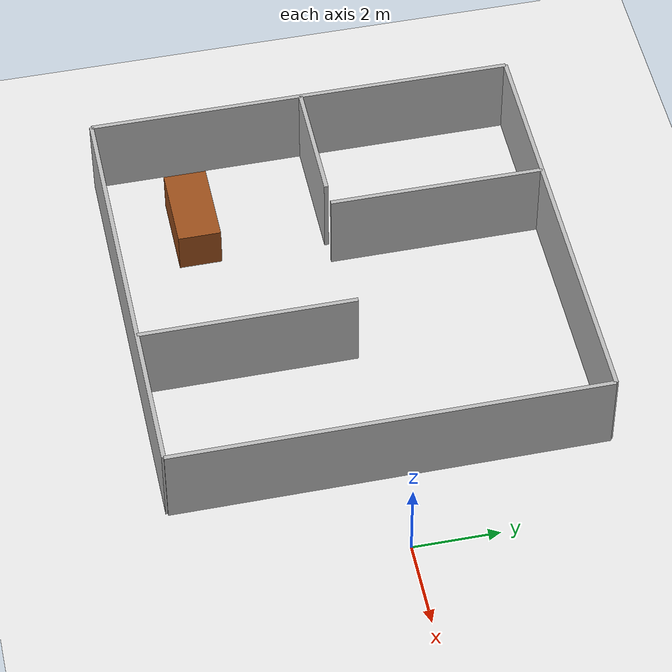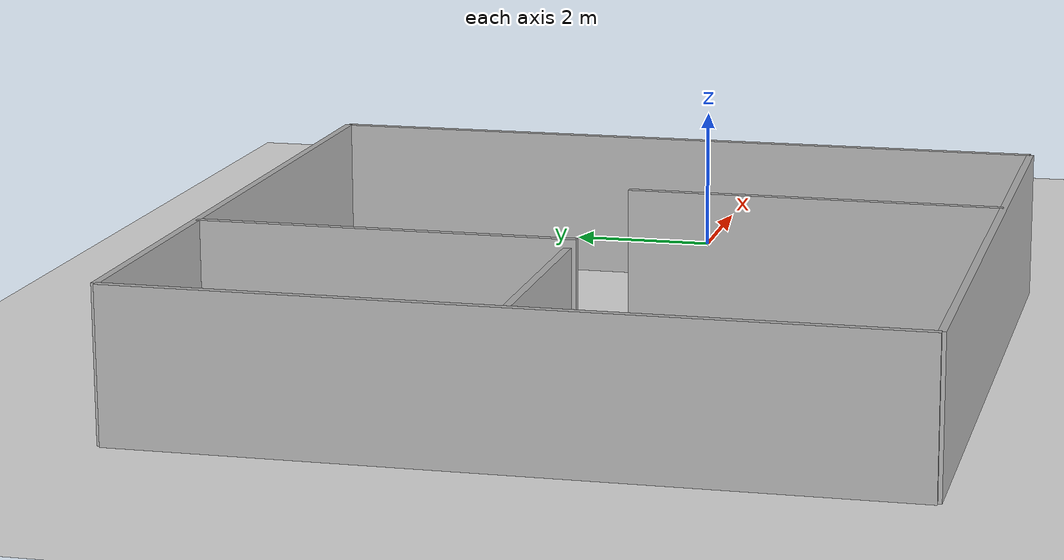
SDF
<?xml version="1.0" ?>
<sdf version="1.8">
  <world name="office">
    <physics name="1ms" type="ignored">
      <max_step_size>0.001</max_step_size>
      <real_time_factor>1.0</real_time_factor>
    </physics>

    <!-- Plugins -->
    <plugin filename="gz-sim-physics-system" name="gz::sim::systems::Physics"/>
    <plugin filename="gz-sim-user-commands-system" name="gz::sim::systems::UserCommands"/>
    <plugin filename="gz-sim-scene-broadcaster-system" name="gz::sim::systems::SceneBroadcaster"/>
    <plugin filename="gz-sim-sensors-system" name="gz::sim::systems::Sensors">
      <render_engine>ogre2</render_engine>
    </plugin>
    <plugin filename="gz-sim-imu-system" name="gz::sim::systems::Imu"/>

    <!-- Light -->
    <light type="directional" name="sun">
      <cast_shadows>true</cast_shadows>
      <pose>0 0 10 0 0 0</pose>
      <diffuse>0.8 0.8 0.8 1</diffuse>
      <specular>0.2 0.2 0.2 1</specular>
      <direction>-0.5 0.1 -0.9</direction>
    </light>

    <!-- Ground -->
    <model name="ground_plane">
      <static>true</static>
      <link name="link">
        <collision name="collision"><geometry><plane><normal>0 0 1</normal><size>20 20</size></plane></geometry></collision>
        <visual name="visual"><geometry><plane><normal>0 0 1</normal><size>20 20</size></plane></geometry>
          <material><ambient>0.9 0.9 0.9 1</ambient><diffuse>0.9 0.9 0.9 1</diffuse></material>
        </visual>
      </link>
    </model>

    <!-- Exterior Office Walls (10m x 10m) -->
    <model name="wall_north"><static>true</static><pose>-7 5 1 0 0 0</pose><link name="link"><collision name="collision"><geometry><box><size>10 0.1 2</size></box></geometry></collision><visual name="visual"><geometry><box><size>10 0.1 2</size></box></geometry></visual></link></model>
    <model name="wall_south"><static>true</static><pose>-7 -5 1 0 0 0</pose><link name="link"><collision name="collision"><geometry><box><size>10 0.1 2</size></box></geometry></collision><visual name="visual"><geometry><box><size>10 0.1 2</size></box></geometry></visual></link></model>
    <model name="wall_east"><static>true</static><pose>-2 0 1 0 0 0</pose><link name="link"><collision name="collision"><geometry><box><size>0.1 10 2</size></box></geometry></collision><visual name="visual"><geometry><box><size>0.1 10 2</size></box></geometry></visual></link></model>
    <model name="wall_west"><static>true</static><pose>-12 0 1 0 0 0</pose><link name="link"><collision name="collision"><geometry><box><size>0.1 10 2</size></box></geometry></collision><visual name="visual"><geometry><box><size>0.1 10 2</size></box></geometry></visual></link></model>

    <!-- Room Dividers -->
    <!-- Central Corridor -->
    <model name="divider_left"><static>true</static><pose>-8.5 2.5 1 0 0 0</pose><link name="link"><collision name="collision"><geometry><box><size>0.1 5 2</size></box></geometry></collision><visual name="visual"><geometry><box><size>0.1 5 2</size></box></geometry></visual></link></model>
    <model name="divider_right"><static>true</static><pose>-5.5 -2.5 1 0 0 0</pose><link name="link"><collision name="collision"><geometry><box><size>0.1 5 2</size></box></geometry></collision><visual name="visual"><geometry><box><size>0.1 5 2</size></box></geometry></visual></link></model>

    <!-- Room Doors -->
    <!-- Gap to enter left room -->
    <model name="room_wall_1"><static>true</static><pose>-10.5 0 1 0 0 0</pose><link name="link"><collision name="collision"><geometry><box><size>3 0.1 2</size></box></geometry></collision><visual name="visual"><geometry><box><size>3 0.1 2</size></box></geometry></visual></link></model>

    <!-- Meeting table -->
    <model name="table"><static>true</static><pose>-10 -3 0.5 0 0 0</pose><link name="link"><collision name="collision"><geometry><box><size>2 1 1</size></box></geometry></collision><visual name="visual"><geometry><box><size>2 1 1</size></box></geometry><material><ambient>0.6 0.3 0.1 1</ambient></material></visual></link></model>

  </world>
</sdf>
